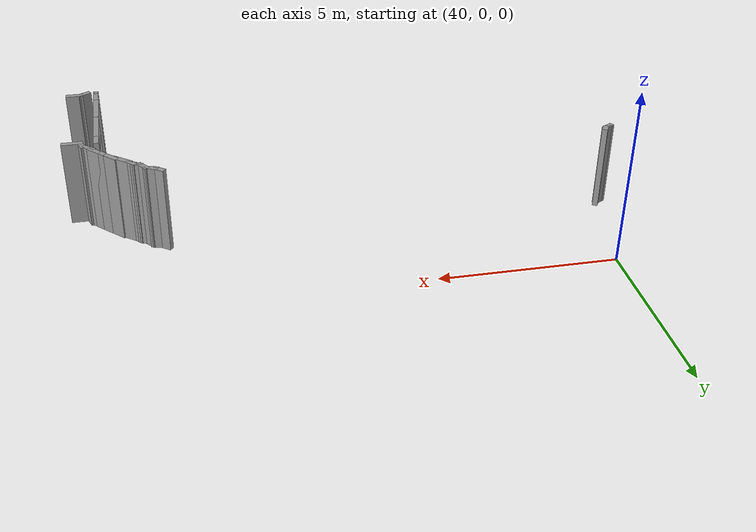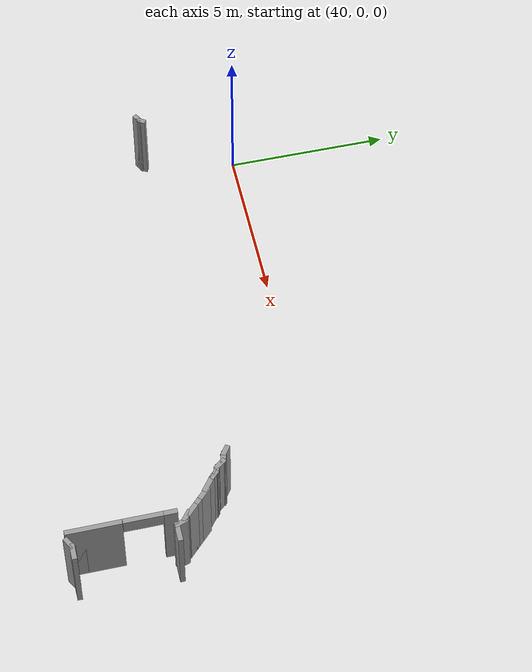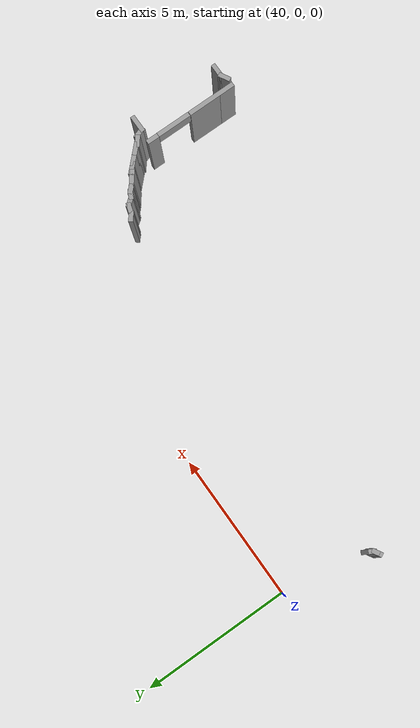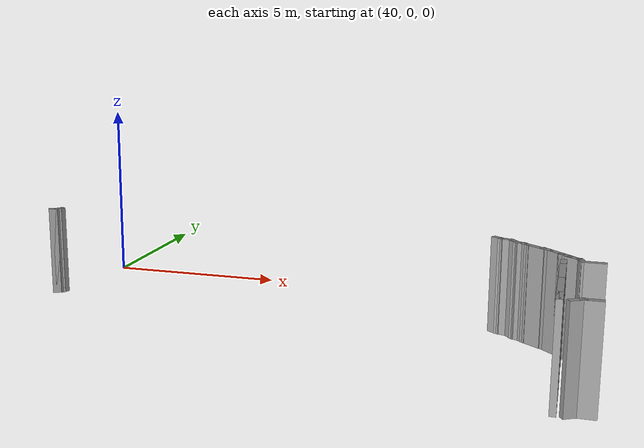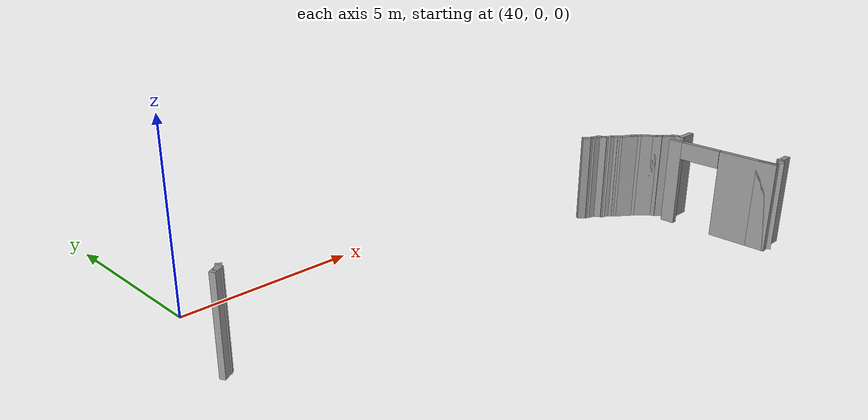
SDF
<sdf version="1.6">
 <model name="draft3">
  <pose>34.2026 -2.81154 0 0 -0 0</pose>
  <link name="Wall_322">
   <collision name="Wall_322_Collision">
    <geometry><box><size>0.595011 0.15 2.5</size></box></geometry>
    <pose>0 0 1.25 0 -0 0</pose>
   </collision>
   <visual name="Wall_322_Visual">
    <pose>0 0 1.25 0 -0 0</pose>
    <geometry><box><size>0.595011 0.15 2.5</size></box></geometry>
    <material>
     <script><uri>file://media/materials/scripts/gazebo.material</uri><name>Gazebo/Grey</name></script>
     <ambient>1 1 1 1</ambient>
    </material>
   </visual>
   <pose>20.0533 -1.89516 0 0 -0 3.14159</pose>
  </link>
  <link name="Wall_323">
   <collision name="Wall_323_Collision">
    <geometry><box><size>0.405864 0.15 2.5</size></box></geometry>
    <pose>0 0 1.25 0 -0 0</pose>
   </collision>
   <visual name="Wall_323_Visual">
    <pose>0 0 1.25 0 -0 0</pose>
    <geometry><box><size>0.405864 0.15 2.5</size></box></geometry>
    <material>
     <script><uri>file://media/materials/scripts/gazebo.material</uri><name>Gazebo/Grey</name></script>
     <ambient>1 1 1 1</ambient>
    </material>
   </visual>
   <pose>19.7904 -1.77379 0 0 -0 1.89255</pose>
  </link>
  <link name="Wall_324">
   <collision name="Wall_324_Collision">
    <geometry><box><size>0.409042 0.15 2.5</size></box></geometry>
    <pose>0 0 1.25 0 -0 0</pose>
   </collision>
   <visual name="Wall_324_Visual">
    <pose>0 0 1.25 0 -0 0</pose>
    <geometry><box><size>0.409042 0.15 2.5</size></box></geometry>
    <material>
     <script><uri>file://media/materials/scripts/gazebo.material</uri><name>Gazebo/Grey</name></script>
     <ambient>1 1 1 1</ambient>
    </material>
   </visual>
   <pose>19.6083 -1.57151 0 0 -0 2.46685</pose>
  </link>
  <link name="Wall_325">
   <collision name="Wall_325_Collision">
    <geometry><box><size>0.436064 0.15 2.5</size></box></geometry>
    <pose>0 0 1.25 0 -0 0</pose>
   </collision>
   <visual name="Wall_325_Visual">
    <pose>0 0 1.25 0 -0 0</pose>
    <geometry><box><size>0.436064 0.15 2.5</size></box></geometry>
    <material>
     <script><uri>file://media/materials/scripts/gazebo.material</uri><name>Gazebo/Grey</name></script>
     <ambient>1 1 1 1</ambient>
    </material>
   </visual>
   <pose>19.4465 -1.38946 0 0 -0 2.35619</pose>
  </link>
  <link name="Wall_326">
   <collision name="Wall_326_Collision">
    <geometry><box><size>0.493277 0.15 2.5</size></box></geometry>
    <pose>0 0 1.25 0 -0 0</pose>
   </collision>
   <visual name="Wall_326_Visual">
    <pose>0 0 1.25 0 -0 0</pose>
    <geometry><box><size>0.493277 0.15 2.5</size></box></geometry>
    <material>
     <script><uri>file://media/materials/scripts/gazebo.material</uri><name>Gazebo/Grey</name></script>
     <ambient>1 1 1 1</ambient>
    </material>
   </visual>
   <pose>19.224 -1.16696 0 0 -0 2.35619</pose>
  </link>
  <link name="Wall_327">
   <collision name="Wall_327_Collision">
    <geometry><box><size>0.436064 0.15 2.5</size></box></geometry>
    <pose>0 0 1.25 0 -0 0</pose>
   </collision>
   <visual name="Wall_327_Visual">
    <pose>0 0 1.25 0 -0 0</pose>
    <geometry><box><size>0.436064 0.15 2.5</size></box></geometry>
    <material>
     <script><uri>file://media/materials/scripts/gazebo.material</uri><name>Gazebo/Grey</name></script>
     <ambient>1 1 1 1</ambient>
    </material>
   </visual>
   <pose>19.0015 -0.944452 0 0 -0 2.35619</pose>
  </link>
  <link name="Wall_328">
   <collision name="Wall_328_Collision">
    <geometry><box><size>0.611265 0.15 2.5</size></box></geometry>
    <pose>0 0 1.25 0 -0 0</pose>
   </collision>
   <visual name="Wall_328_Visual">
    <pose>0 0 1.25 0 -0 0</pose>
    <geometry><box><size>0.611265 0.15 2.5</size></box></geometry>
    <material>
     <script><uri>file://media/materials/scripts/gazebo.material</uri><name>Gazebo/Grey</name></script>
     <ambient>1 1 1 1</ambient>
    </material>
   </visual>
   <pose>18.7183 -0.742174 0 0 -0 2.48055</pose>
  </link>
  <link name="Wall_329">
   <collision name="Wall_329_Collision">
    <geometry><box><size>0.321638 0.15 2.5</size></box></geometry>
    <pose>0 0 1.25 0 -0 0</pose>
   </collision>
   <visual name="Wall_329_Visual">
    <pose>0 0 1.25 0 -0 0</pose>
    <geometry><box><size>0.321638 0.15 2.5</size></box></geometry>
    <material>
     <script><uri>file://media/materials/scripts/gazebo.material</uri><name>Gazebo/Grey</name></script>
     <ambient>1 1 1 1</ambient>
    </material>
   </visual>
   <pose>18.4755 -0.539896 0 0 -0 2.35619</pose>
  </link>
  <link name="Wall_330">
   <collision name="Wall_330_Collision">
    <geometry><box><size>0.330923 0.15 2.5</size></box></geometry>
    <pose>0 0 1.25 0 -0 0</pose>
   </collision>
   <visual name="Wall_330_Visual">
    <pose>0 0 1.25 0 -0 0</pose>
    <geometry><box><size>0.330923 0.15 2.5</size></box></geometry>
    <material>
     <script><uri>file://media/materials/scripts/gazebo.material</uri><name>Gazebo/Grey</name></script>
     <ambient>1 1 1 1</ambient>
    </material>
   </visual>
   <pose>18.334 -0.438757 0 0 -0 2.67794</pose>
  </link>
  <link name="Wall_331">
   <collision name="Wall_331_Collision">
    <geometry><box><size>0.409042 0.15 2.5</size></box></geometry>
    <pose>0 0 1.25 0 -0 0</pose>
   </collision>
   <visual name="Wall_331_Visual">
    <pose>0 0 1.25 0 -0 0</pose>
    <geometry><box><size>0.409042 0.15 2.5</size></box></geometry>
    <material>
     <script><uri>file://media/materials/scripts/gazebo.material</uri><name>Gazebo/Grey</name></script>
     <ambient>1 1 1 1</ambient>
    </material>
   </visual>
   <pose>18.1721 -0.297163 0 0 -0 2.24554</pose>
  </link>
  <link name="Wall_332">
   <collision name="Wall_332_Collision">
    <geometry><box><size>0.405864 0.15 2.5</size></box></geometry>
    <pose>0 0 1.25 0 -0 0</pose>
   </collision>
   <visual name="Wall_332_Visual">
    <pose>0 0 1.25 0 -0 0</pose>
    <geometry><box><size>0.405864 0.15 2.5</size></box></geometry>
    <material>
     <script><uri>file://media/materials/scripts/gazebo.material</uri><name>Gazebo/Grey</name></script>
     <ambient>1 1 1 1</ambient>
    </material>
   </visual>
   <pose>17.9699 -0.155568 0 0 -0 2.81984</pose>
  </link>
  <link name="Wall_333">
   <collision name="Wall_333_Collision">
    <geometry><box><size>0.352278 0.15 2.5</size></box></geometry>
    <pose>0 0 1.25 0 -0 0</pose>
   </collision>
   <visual name="Wall_333_Visual">
    <pose>0 0 1.25 0 -0 0</pose>
    <geometry><box><size>0.352278 0.15 2.5</size></box></geometry>
    <material>
     <script><uri>file://media/materials/scripts/gazebo.material</uri><name>Gazebo/Grey</name></script>
     <ambient>1 1 1 1</ambient>
    </material>
   </visual>
   <pose>17.7676 -0.05443 0 0 -0 2.49809</pose>
  </link>
  <link name="Wall_339">
   <collision name="Wall_339_Collision">
    <geometry><box><size>0.5 0.15 2.5</size></box></geometry>
    <pose>0 0 1.25 0 -0 0</pose>
   </collision>
   <visual name="Wall_339_Visual">
    <pose>0 0 1.25 0 -0 0</pose>
    <geometry><box><size>0.5 0.15 2.5</size></box></geometry>
    <material>
     <script><uri>file://media/materials/scripts/gazebo.material</uri><name>Gazebo/Grey</name></script>
     <ambient>1 1 1 1</ambient>
    </material>
   </visual>
   <pose>20.0199 -4.88887 0 0 -0 3.14159</pose>
  </link>
  <link name="Wall_340">
   <collision name="Wall_340_Collision">
    <geometry><box><size>0.398091 0.15 2.5</size></box></geometry>
    <pose>0 0 1.25 0 -0 0</pose>
   </collision>
   <visual name="Wall_340_Visual">
    <pose>0 0 1.25 0 -0 0</pose>
    <geometry><box><size>0.398091 0.15 2.5</size></box></geometry>
    <material>
     <script><uri>file://media/materials/scripts/gazebo.material</uri><name>Gazebo/Grey</name></script>
     <ambient>1 1 1 1</ambient>
    </material>
   </visual>
   <pose>19.7367 -4.94955 0 0 0 -2.63042</pose>
  </link>
  <link name="Wall_495">
   <collision name="Wall_495_Collision">
    <geometry><box><size>0.25 0.15 2.5</size></box></geometry>
    <pose>0 0 1.25 0 -0 0</pose>
   </collision>
   <visual name="Wall_495_Visual">
    <pose>0 0 1.25 0 -0 0</pose>
    <geometry><box><size>0.25 0.15 2.5</size></box></geometry>
    <material>
     <script><uri>file://media/materials/scripts/gazebo.material</uri><name>Gazebo/Grey</name></script>
     <ambient>1 1 1 1</ambient>
    </material>
   </visual>
   <pose>5.15231 -0.161957 0 0 -0 0.523599</pose>
  </link>
  <link name="Wall_496">
   <collision name="Wall_496_Collision">
    <geometry><box><size>0.25 0.15 2.5</size></box></geometry>
    <pose>0 0 1.25 0 -0 0</pose>
   </collision>
   <visual name="Wall_496_Visual">
    <pose>0 0 1.25 0 -0 0</pose>
    <geometry><box><size>0.25 0.15 2.5</size></box></geometry>
    <material>
     <script><uri>file://media/materials/scripts/gazebo.material</uri><name>Gazebo/Grey</name></script>
     <ambient>1 1 1 1</ambient>
    </material>
   </visual>
   <pose>5.23891 -0.111957 0 0 -0 0.523599</pose>
  </link>
  <link name="Wall_497">
   <collision name="Wall_497_Collision">
    <geometry><box><size>0.25 0.15 2.5</size></box></geometry>
    <pose>0 0 1.25 0 -0 0</pose>
   </collision>
   <visual name="Wall_497_Visual">
    <pose>0 0 1.25 0 -0 0</pose>
    <geometry><box><size>0.25 0.15 2.5</size></box></geometry>
    <material>
     <script><uri>file://media/materials/scripts/gazebo.material</uri><name>Gazebo/Grey</name></script>
     <ambient>1 1 1 1</ambient>
    </material>
   </visual>
   <pose>5.30721 -0.043656 0 0 -0 1.0472</pose>
  </link>
  <link name="Wall_605">
   <pose>19.3945 -3.41379 0 0 0 -1.5708</pose>
   <visual name="Wall_605_Visual_0">
    <pose>-1.42113 0 1.25 0 -0 0</pose>
    <geometry><box><size>0.407748 0.15 2.5</size></box></geometry>
    <material>
     <script><uri>file://media/materials/scripts/gazebo.material</uri><name>Gazebo/Grey</name></script>
     <ambient>1 1 1 1</ambient>
    </material>
   </visual>
   <collision name="Wall_605_Collision_0">
    <geometry><box><size>0.407748 0.15 2.5</size></box></geometry>
    <pose>-1.42113 0 1.25 0 -0 0</pose>
   </collision>
   <visual name="Wall_605_Visual_1">
    <pose>0.795115 0 1.25 0 -0 0</pose>
    <geometry><box><size>1.65977 0.15 2.5</size></box></geometry>
    <material>
     <script><uri>file://media/materials/scripts/gazebo.material</uri><name>Gazebo/Grey</name></script>
     <ambient>1 1 1 1</ambient>
    </material>
   </visual>
   <collision name="Wall_605_Collision_1">
    <geometry><box><size>1.65977 0.15 2.5</size></box></geometry>
    <pose>0.795115 0 1.25 0 -0 0</pose>
   </collision>
   <visual name="Wall_605_Visual_2">
    <pose>1.34774 0 1.25 0 -0 0</pose>
    <geometry><box><size>0.554518 0.15 2.5</size></box></geometry>
    <material>
     <script><uri>file://media/materials/scripts/gazebo.material</uri><name>Gazebo/Grey</name></script>
     <ambient>1 1 1 1</ambient>
    </material>
   </visual>
   <collision name="Wall_605_Collision_2">
    <geometry><box><size>0.554518 0.15 2.5</size></box></geometry>
    <pose>1.34774 0 1.25 0 -0 0</pose>
   </collision>
   <visual name="Wall_605_Visual_3">
    <pose>-0.630998 0 2.25 0 -0 0</pose>
    <geometry><box><size>1.17251 0.15 0.5</size></box></geometry>
    <material>
     <script><uri>file://media/materials/scripts/gazebo.material</uri><name>Gazebo/Grey</name></script>
     <ambient>1 1 1 1</ambient>
    </material>
   </visual>
   <collision name="Wall_605_Collision_3">
    <geometry><box><size>1.17251 0.15 0.5</size></box></geometry>
    <pose>-0.630998 0 2.25 0 -0 0</pose>
   </collision>
  </link>
  <static>1</static>
 </model>
</sdf>
